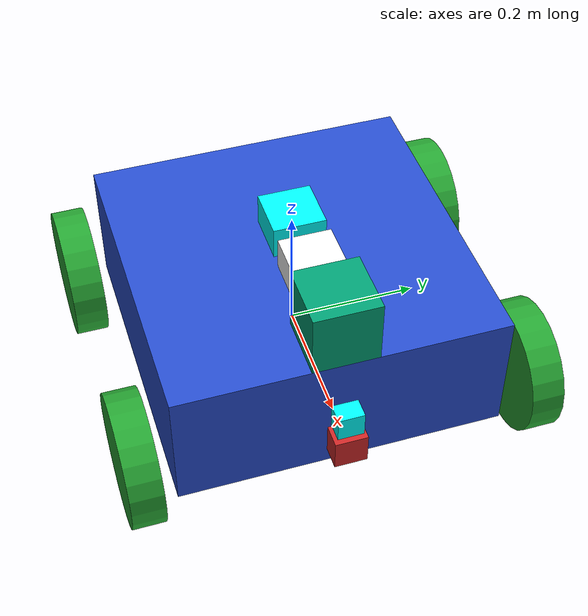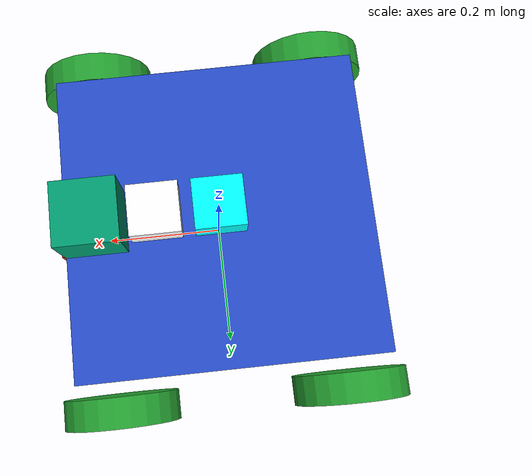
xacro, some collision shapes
<?xml version='1.0'?>

<robot name="rover" xmlns:xacro="http://www.ros.org/wiki/xacro">
<xacro:include filename="$(find rover)/urdf/imu.xacro" />
<xacro:include filename="$(find rover)/urdf/gps.xacro" />
<xacro:include filename="$(find rover)/urdf/zed2.xacro" />

	<xacro:property name="robot_name" value="rover" />
	<xacro:property name="robot_chassis_mass" value="15"/>
	<xacro:property name="robot_chassis_length" value="0.2"/>
	<xacro:property name="robot_chassis_radius" value="0.25"/>
	<xacro:property name="robot_caster_wheel_radius" value="0.05"/>
	<xacro:property name="robot_caster_wheel_radius_collision" value="0.0499"/>

	<xacro:property name="robot_wheel_mass" value="5"/>
	<xacro:property name="robot_wheel_length" value="0.05"/>
	<xacro:property name="robot_wheel_radius" value="0.1"/>

	<xacro:property name="camera_mass" value="0.1"/>
	<xacro:property name="hokoyu_mass" value="1e-5"/>

	<!-- Make Chassis of Bot -->
	<link name="chassis">
		<pose>0 0 0.1 0 0 0</pose>

		<inertial>
			<mass value="${robot_chassis_mass}"/>
      		<origin xyz="0.0 0 0" rpy=" 0 0 0"/>

      		<inertia
      			ixx="0.147116667" ixy="0" ixz="0"
      			iyy="0.334951167" iyz="0"
      			izz="0.3978345"
      		/>
		</inertial>

		<collision name="collision">
			<origin xyz="0 0 0.05" rpy=" 0 0 0"/>
			<geometry>
				<box size="0.5 0.5 0.2"/>
			</geometry>
		</collision>

		<visual name="chassis_visual">
			<origin xyz="0 0 0.05" rpy=" 0 0 0"/>
			<geometry>
				<box size="0.5 0.5 0.2"/>
			</geometry>

		</visual>

	</link>

	<!-- Right Wheel Back -->
	<link name="right_wheel_back">
		<inertial>
			<mass value="${robot_wheel_mass}"/>
			<origin xyz="0 0 0" rpy="0 1.5707 1.5707"/>
			<inertia
				ixx="0.1" ixy="0.0" ixz="0.0"
				iyy="0.1" iyz="0.0"
				izz="0.1"
			/>
		</inertial>

		<visual>
			<origin xyz="0 0 0" rpy="0 1.5707 1.5707"/>
			<geometry>
				<cylinder radius="${robot_wheel_radius}" length="${robot_wheel_length}"/>
			</geometry>
		</visual>

		<collision>
			<origin xyz="0 0 0" rpy="0 1.5707 1.5707"/>
			<geometry>
				<cylinder radius="${robot_wheel_radius}" length="${robot_wheel_length}"/>
			</geometry>
		</collision>

	</link>

	<!-- Right Wheel Front-->
	<link name="right_wheel_front">
		<inertial>
			<mass value="${robot_wheel_mass}"/>
			<origin xyz="0 0 0" rpy="0 1.5707 1.5707"/>
			<inertia
				ixx="0.1" ixy="0.0" ixz="0.0"
				iyy="0.1" iyz="0.0"
				izz="0.1"
			/>
		</inertial>

		<visual>
			<origin xyz="0 0 0" rpy="0 1.5707 1.5707"/>
			<geometry>
				<cylinder radius="${robot_wheel_radius}" length="${robot_wheel_length}"/>
			</geometry>
		</visual>

		<collision>
			<origin xyz="0 0 0" rpy="0 1.5707 1.5707"/>
			<geometry>
				<cylinder radius="${robot_wheel_radius}" length="${robot_wheel_length}"/>
			</geometry>
		</collision>

	</link>

	<!-- Left wheel Back-->
	<link name="left_wheel_back">
		<inertial>
			<mass value="${robot_wheel_mass}"/>
			<origin xyz="0 0 0" rpy="0 1.5707 1.5707"/>
			<inertia
				ixx="0.1" ixy="0.0" ixz="0.0"
				iyy="0.1" iyz="0.0"
				izz="0.1"
			/>
		</inertial>

		<visual>
			<origin xyz="0 0 0" rpy="0 1.5707 1.5707"/>
			<geometry>
				<cylinder radius="${robot_wheel_radius}" length="${robot_wheel_length}"/>
			</geometry>
		</visual>

		<collision>
			<origin xyz="0 0 0" rpy="0 1.5707 1.5707"/>
			<geometry>
				<cylinder radius="${robot_wheel_radius}" length="${robot_wheel_length}"/>
			</geometry>
		</collision>

	</link>

	<!-- Left wheel Front-->
	<link name="left_wheel_front">
		<inertial>
			<mass value="${robot_wheel_mass}"/>
			<origin xyz="0 0 0" rpy="0 1.5707 1.5707"/>
			<inertia
				ixx="0.1" ixy="0.0" ixz="0.0"
				iyy="0.1" iyz="0.0"
				izz="0.1"
			/>
		</inertial>

		<visual>
			<origin xyz="0 0 0" rpy="0 1.5707 1.5707"/>
			<geometry>
				<cylinder radius="${robot_wheel_radius}" length="${robot_wheel_length}"/>
			</geometry>
		</visual>

		<collision>
			<origin xyz="0 0 0" rpy="0 1.5707 1.5707"/>
			<geometry>
				<cylinder radius="${robot_wheel_radius}" length="${robot_wheel_length}"/>
			</geometry>
		</collision>

	</link>

	<!-- Camera -->
	<link name="camera">
		<inertial>
			<mass value="${camera_mass}"/>
			<origin xyz="0 0 0" rpy="0 0 0"/>
			<inertia
		        ixx="1e-6" ixy="0.0" ixz="0.0"
		        iyy="1e-6" iyz="0.0"
		        izz="1e-6"
		      />
		</inertial>

		<visual>
			<origin xyz="0 0 0" rpy="0 0 0"/>
			<geometry>
				<box size="0.05 0.05 0.05"/>
			</geometry>
		</visual>

		<collision>
			<origin xyz="0 0 0" rpy="0 0 0"/>
			<geometry>
				<box size="0.05 0.05 0.05"/>
			</geometry>
		</collision>
	</link>

	<!-- Hokuyo Lidar -->
	<link name="hokuyo">
		<inertial>
			<mass value="${hokoyu_mass}"/>
			<origin xyz="0 0 0" rpy="0 0 0"/>

			<inertia
		        ixx="1e-6" ixy="0.0" ixz="0.0"
		        iyy="1e-6" iyz="0.0"
		        izz="1e-6"
		      />
		</inertial>

		<visual>
			<origin xyz="0 0 0" rpy="0 0 0"/>
			<geometry>
				<mesh filename="package://rover/meshes/hokuyo.dae"/>
			</geometry>
		</visual>

		<collision>
			<origin xyz="0 0 0" rpy="0 0 0"/>
			<geometry>
				<box size="0.1 0.1 0.1"/>
			</geometry>
		</collision>
	</link>

	<!-- Project center to the ground -->
	<link name="robot_footprint"></link>

	<!-- Define Joints -->

	<!-- Right Wheel Joint Back-->
	<joint type="continuous" name="right_wheel_hinge_back">
	    <origin xyz="-0.2 -0.30 0" rpy="0 0 0" />
	    <parent link="chassis"/>
	    <child link="right_wheel_back" />
	    <axis xyz="0 1 0" rpy="0 0 0" />
	    <limit effort="10000" velocity="1000" />
	    <dynamics damping="1.0" friction="1.0" />
	</joint>

	<!-- Right Wheel Joint Front-->
	<joint type="continuous" name="right_wheel_hinge_front">
	    <origin xyz="0.2 -0.30 0" rpy="0 0 0" />
	    <parent link="chassis"/>
	    <child link="right_wheel_front" />
	    <axis xyz="0 1 0" rpy="0 0 0" />
	    <limit effort="10000" velocity="1000" />
	    <dynamics damping="1.0" friction="1.0" />
	</joint>

	<!-- Left Wheel Joint Back-->
	<joint type="continuous" name="left_wheel_hinge_back">
	    <origin xyz="-0.2 0.30 0" rpy="0 0 0" />
	    <parent link="chassis"/>
	    <child link="left_wheel_back" />
	    <axis xyz="0 1 0" rpy="0 0 0" />
	    <limit effort="10000" velocity="1000" />
	    <dynamics damping="1.0" friction="1.0" />
	</joint>

	<!-- Left Wheel Joint Front-->
	<joint type="continuous" name="left_wheel_hinge_front">
	    <origin xyz="0.2 0.30 0" rpy="0 0 0" />
	    <parent link="chassis"/>
	    <child link="left_wheel_front" />
	    <axis xyz="0 1 0" rpy="0 0 0" />
	    <limit effort="10000" velocity="1000" />
	    <dynamics damping="1.0" friction="1.0" />
	</joint>

	<!-- Camera Joint -->
	<joint name="camera_joint" type="fixed">
		<origin xyz="0.26 0 0" rpy="0 0 0" />
		<parent link="chassis"/>
		<child link="camera" />
		<axis xyz="0 1 0"/>
	</joint>

	<!-- Hokoyu Joint -->
	<joint name="hokuyo_joint" type="fixed">
	    <origin xyz="0.2 0 0.2" rpy="0 0 0" />
	    <parent link="chassis"/>
	    <child link="hokuyo" />
	    <axis xyz="0 1 0"/>
	</joint>

	<joint name="robot_footprint_joint" type="fixed">
		<origin xyz="0 0 0" rpy="0 0 0" />
		<parent link="robot_footprint"/>
		<child link="chassis" />
	</joint>

	<!-- Color of bot -->
	<gazebo reference="left_wheel_front">
		<material>Gazebo/Green</material>
		<kp>1000000.0</kp> <!-- kp and kd for rubber -->
		<kd>100.0</kd>
		<mu1>1.0</mu1>
		<mu2>1.0</mu2>
		<maxVel>1.0</maxVel>
		<minDepth>0.00</minDepth>
	</gazebo>

	<gazebo reference="left_wheel_back">
		<material>Gazebo/Green</material>
		<kp>1000000.0</kp> <!-- kp and kd for rubber -->
		<kd>100.0</kd>
		<mu1>1.0</mu1>
		<mu2>1.0</mu2>
		<maxVel>1.0</maxVel>
		<minDepth>0.00</minDepth>
	</gazebo>

	<gazebo reference="right_wheel_front">
		<material>Gazebo/Green</material>
		<kp>1000000.0</kp> <!-- kp and kd for rubber -->
		<kd>100.0</kd>
		<mu1>1.0</mu1>
		<mu2>1.0</mu2>
		<maxVel>1.0</maxVel>
		<minDepth>0.00</minDepth>
	</gazebo>
	<gazebo reference="right_wheel_back">
		<material>Gazebo/Green</material>
		<kp>1000000.0</kp> <!-- kp and kd for rubber -->
		<kd>100.0</kd>
		<mu1>1.0</mu1>
		<mu2>1.0</mu2>
		<maxVel>1.0</maxVel>
		<minDepth>0.00</minDepth>
	</gazebo>

	<gazebo reference="camera">
		<material>Gazebo/Red</material>
	</gazebo>

	<gazebo reference="chassis">
		<material>Gazebo/Blue</material>
	</gazebo>

	<!-- Motor, Camera and Lidar Simulation -->
	<xacro:include filename="$(find rover)/urdf/rover.gazebo" />

</robot>

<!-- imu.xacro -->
<robot xmlns:xacro="http://www.ros.org/wiki/xacro" name="imu_sensor">
<link name="imu_link">
    <inertial>
        <origin xyz="0.0 0.0 0.0" rpy="0.0 0.0 0.0"/>
        <mass value="1.0"/>
        <inertia ixx="7.41e-4" ixy="0.0" ixz="0.0" iyy="7.41e-4" iyz="0.0" izz="1.066e-3"/>
    </inertial>
    <visual name="">
        <origin xyz="0.0 0.0 0.0" rpy="0.0 0.0 0.0"/>
        <geometry>
            <box size="0.08 0.08 0.05"/>
        </geometry>
        <material name="">
            <color rgba="0.0 1.0 1.0 1.0"/>
            <texture filename=""/>
        </material>
    </visual>
</link>
<joint name="imu_joint" type="fixed">
    <origin xyz="0 0 0.2" rpy="0.0 0.0 0.0"/>
    <parent link="chassis"/>
    <child link="imu_link"/>
    <axis xyz="0.0 0.0 0.0"/>
    <limit lower="0.0" upper="0.0" effort="0.0" velocity="0.0"/>
</joint>
     <gazebo reference="imu_link">
     <material>Gazebo/Yellow</material>
    <gravity>true</gravity>
    <sensor name="imu_sensor" type="imu">
      <always_on>true</always_on>
      <update_rate>100</update_rate>
      <visualize>true</visualize>
      <topic>__default_topic__</topic>
      <plugin filename="libgazebo_ros_imu_sensor.so" name="imu_plugin">
        <topicName>imu</topicName>
        <bodyName>imu_link</bodyName>
        <updateRateHZ>10.0</updateRateHZ>
        <gaussianNoise>0.0</gaussianNoise>
        <xyzOffset>0 0 0</xyzOffset>
        <rpyOffset>0 0 0</rpyOffset>
        <frameName>imu_link</frameName>
        <initialOrientationAsReference>false</initialOrientationAsReference>
      </plugin>
      <pose>0 0 0 0 0 0</pose>
    </sensor>
  </gazebo>
</robot>

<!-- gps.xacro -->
<robot xmlns:xacro="http://www.ros.org/wiki/xacro" name="gps_sensor">
<link name="gps_link">
    <inertial>
        <origin xyz="0.0 0.0 0.0" rpy="0.0 0.0 0.0"/>
        <mass value="1.0"/>
        <inertia ixx="7.41e-4" ixy="0.0" ixz="0.0" iyy="7.41e-4" iyz="0.0" izz="1.066e-3"/>
    </inertial>
    <visual name="">
        <origin xyz="0.0 0.0 0.0" rpy="0.0 0.0 0.0"/>
        <geometry>
            <box size="0.08 0.08 0.05"/>
        </geometry>
        <material name="">
            <color rgba="1.0 1.0 1.0 1.0"/>
            <texture filename=""/>
        </material>
    </visual>
</link>
<gazebo reference="gps_link">
<material>Gazebo/White</material>
</gazebo>
<joint name="gps_joint" type="fixed">
    <origin xyz="0.1 0.0 0.2" rpy="0.0 0.0 0.0"/>
    <parent link="chassis"/>
    <child link="gps_link"/>
    <axis xyz="0.0 0.0 0.0"/>
    <limit lower="0.0" upper="0.0" effort="0.0" velocity="0.0"/>
</joint>

<gazebo>
            <plugin name="gazebo_ros_gps" filename="libhector_gazebo_ros_gps.so">
                <updateRate>4.0</updateRate>
                <bodyName>gps_link</bodyName>
                <frameId>gps_link</frameId>
                <topicName>/gps/fix</topicName>
                <velocityTopicName>/gps/fix_velocity</velocityTopicName>
                <referenceLatitude>0.0</referenceLatitude>
                <referenceLongitude>0.0</referenceLongitude>
                <referenceHeading>90</referenceHeading>
                <referenceAltitude>10</referenceAltitude>
                <offset>0 0 0</offset>
                <drift>0.001 0.001 0.001</drift>
                <gaussianNoise>0.05 0.05 0.05</gaussianNoise>
                <velocityDrift>0.001 0.001 0.001</velocityDrift>
                <velocityGaussianNoise>0.5 0.5 0.5</velocityGaussianNoise>
            </plugin>
        </gazebo>

</robot>

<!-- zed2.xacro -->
<robot xmlns:xacro="http://www.ros.org/wiki/xacro" name="zed2_sensor">

<link name="zed2_link">
    <inertial>
        <origin xyz="0.0 0.0 0.0" rpy="0.0 0.0 0.0"/>
        <mass value="1.0"/>
        <inertia ixx="7.41e-4" ixy="0.0" ixz="0.0" iyy="7.41e-4" iyz="0.0" izz="1.066e-3"/>
    </inertial>
    <visual name="">
        <origin xyz="0.0 0.0 0.0" rpy="0.0 0.0 0.0"/>
        <geometry>
            <box size="0.04 0.04 0.04"/>
        </geometry>
        <material name="">
            <color rgba="0.0 1.0 1.0 1.0"/>
            <texture filename=""/>
        </material>
    </visual>
    <collision>
        <origin xyz="0.0 0.0 0.0" rpy="0.0 0.0 0.0"/>
        <geometry>
            <box size="0.0 0.0 0.0"/>
        </geometry>
    </collision>
</link>

<joint name="zed2_joint" type="fixed">
    <origin xyz="0.26 0 0.05" rpy="0.0 1.57 1.57"/>
    <parent link="chassis"/>
    <child link="zed2_link"/>
    <axis xyz="0.0 1.0 0.0"/>
    <limit lower="0.0" upper="0.0" effort="0.0" velocity="0.0"/>
</joint>

<link name="zed2_optical_frame"/>

<joint name="zed2_optical_joint" type="fixed">
  <origin xyz="0.0 0.0 0.0" rpy="1.57 -1.57 0.0"/>
  <parent link="zed2_link"/>
  <child link="zed2_optical_frame"/>
</joint>

    <gazebo reference="zed2_optical_frame">
    <material>Gazebo/Pink</material>
  <sensor name="zed2_optical_frame" type="depth">
    <update_rate>20</update_rate>
    <camera>
      <horizontal_fov>2.09</horizontal_fov>
      <image>
        <width>640</width>
        <height>480</height>
        <format>R8G8B8</format>
      </image>
      <clip>
        <near>0.0001</near>
        <far>3</far>
      </clip>
    </camera>
    <plugin name="zed2_link_controller" filename="libgazebo_ros_openni_kinect.so">
      <baseline>0.2</baseline>
      <alwaysOn>true</alwaysOn>
      <updateRate>1.0</updateRate>
      <cameraName>zed2_cam_ir</cameraName>
      <imageTopicName>/zed2_cam/color/image_raw</imageTopicName>
      <cameraInfoTopicName>/zed2_cam/color/camera_info</cameraInfoTopicName>
      <depthImageTopicName>/zed2_cam/depth/image_raw</depthImageTopicName>
      <depthImageInfoTopicName>/zed2_cam/depth/camera_info</depthImageInfoTopicName>
      <pointCloudTopicName>/zed2_cam/depth/points</pointCloudTopicName>
      <frameName>zed2_link</frameName>
      <pointCloudCutoff>0.001</pointCloudCutoff>
      <pointCloudCutoffMax>3.0</pointCloudCutoffMax>
      <distortionK1>0.00000001</distortionK1>
      <distortionK2>0.00000001</distortionK2>
      <distortionK3>0.00000001</distortionK3>
      <distortionT1>0.00000001</distortionT1>
      <distortionT2>0.00000001</distortionT2>
      <CxPrime>0</CxPrime>
      <Cx>0</Cx>
      <Cy>0</Cy>
      <focalLength>0</focalLength>
      <hackBaseline>0</hackBaseline>
    </plugin>
  </sensor>
</gazebo>

</robot>
